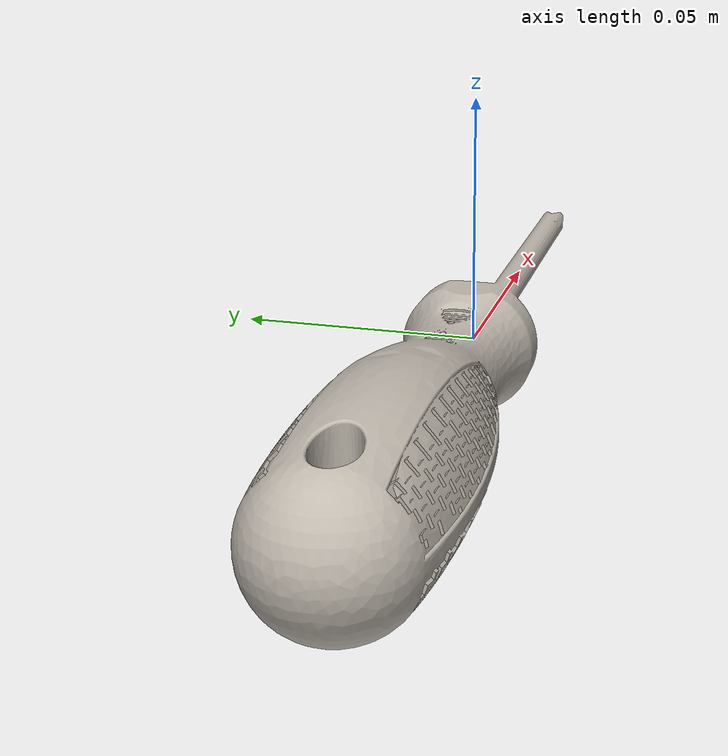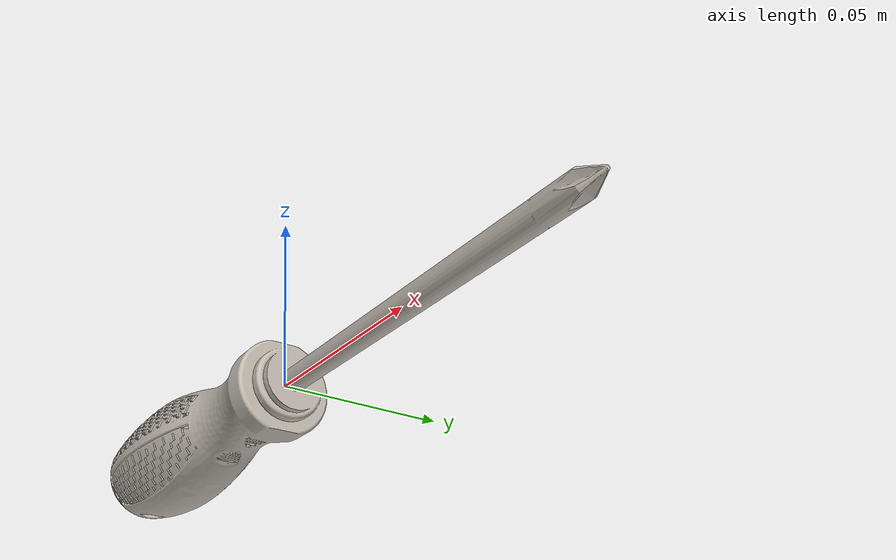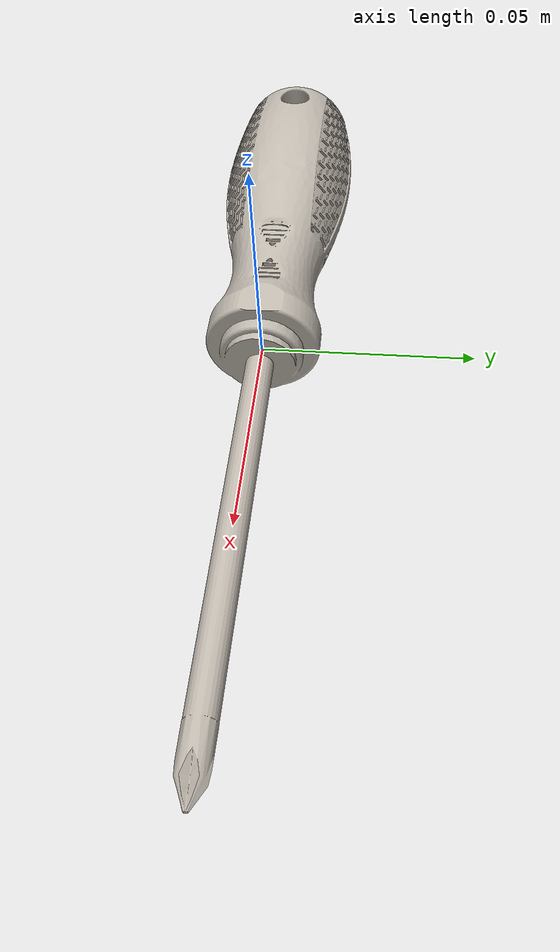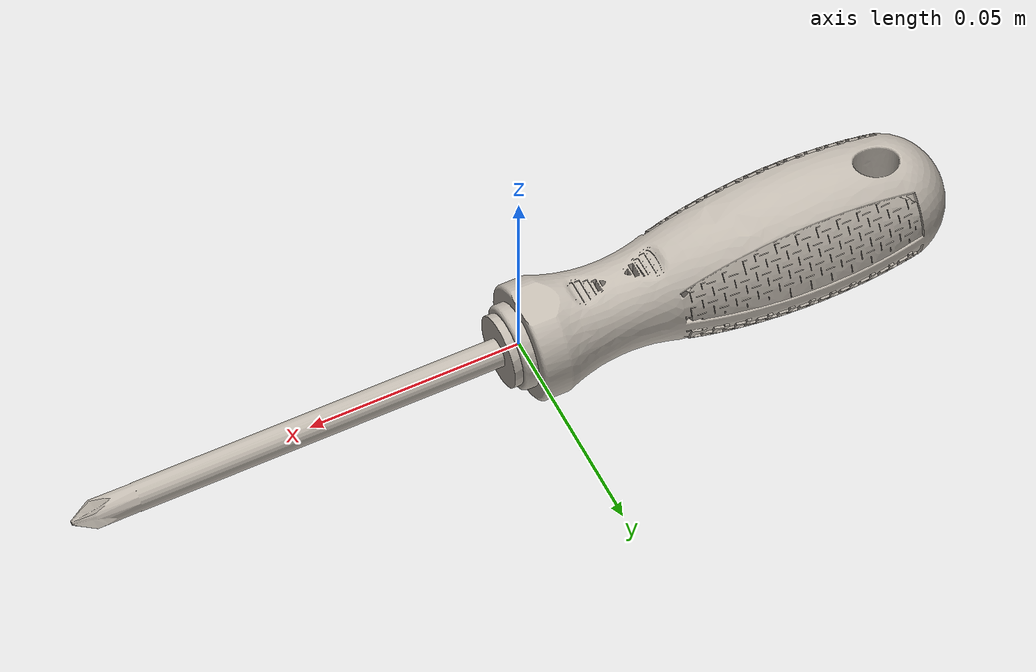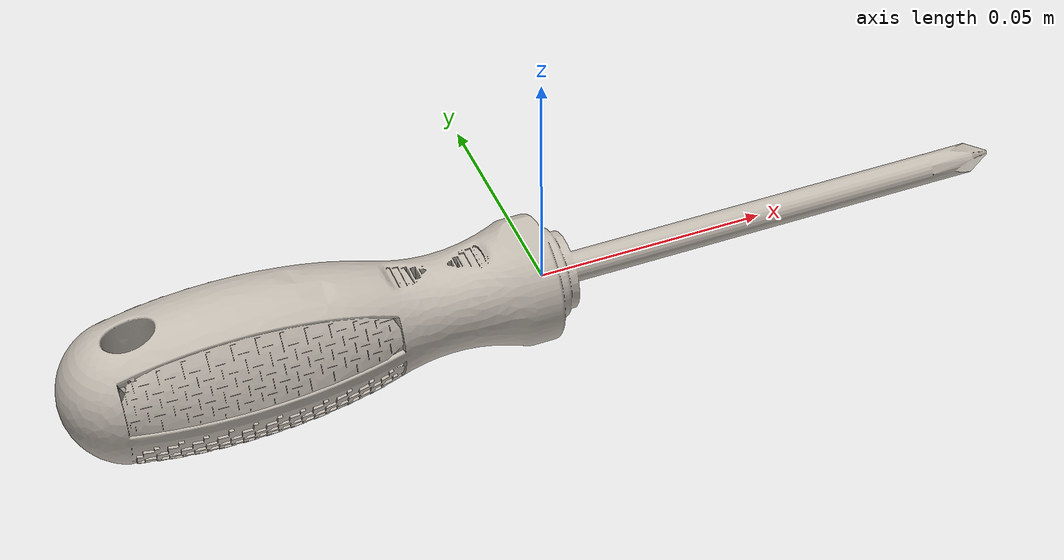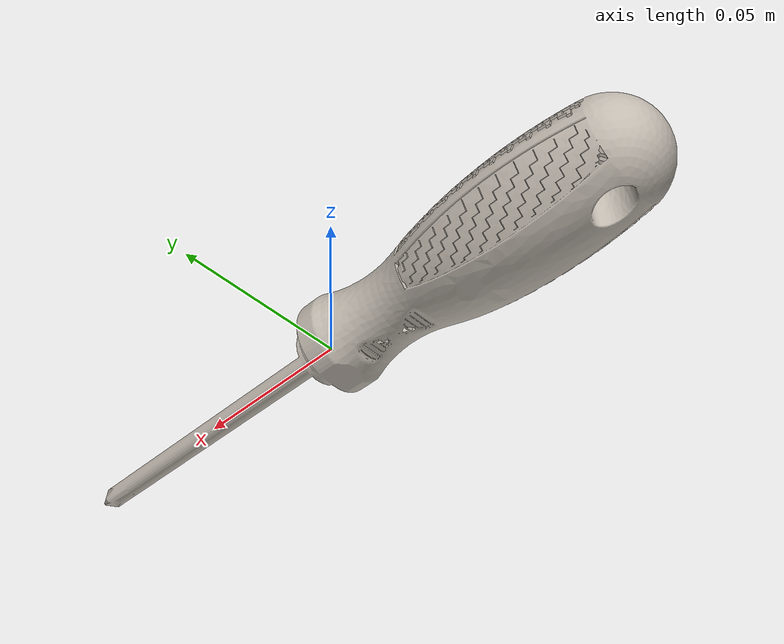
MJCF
<?xml version="1.0" ?>
<mujoco model="screwdriver">
  <asset>
    <mesh file="../meshes/screwdriver.stl" name="screwdriver_mesh" scale="0.001 0.001 0.001"/>
    <texture file="../textures/screwdriver.png" type="2d" name="tex-screwdriver"/>
    <material name="screwdriver" reflectance="0.7" texrepeat="15 15" texture="tex-screwdriver" texuniform="true"/>
  </asset>
  <worldbody>
    <body>
      <body name="object">
        <geom pos="0 0 0" mesh="screwdriver_mesh" type="mesh" solimp="0.998 0.998 0.001" solref="0.001 1" density="100" friction="0.95 0.3 0.1" material="screwdriver" group="0" condim="4"/>
        <site rgba="0 0 0 0" size="0.005" pos="0.105992 0.0 0.0" name="tip_site"/>
      </body>
      <site rgba="0 0 0 0" size="0.005" pos="-0.102989 0.0 0.0" name="bottom_site"/>
      <site rgba="0 0 0 0" size="0.005" pos="0.105992 0.0 0.0" name="top_site"/>
      <site rgba="0 0 0 0" size="0.005" pos="0.1044903678894043 0.01691373348236084 0" name="horizontal_radius_site"/>
    </body>
  </worldbody>
</mujoco>
